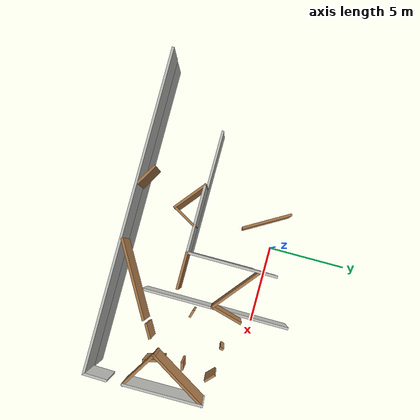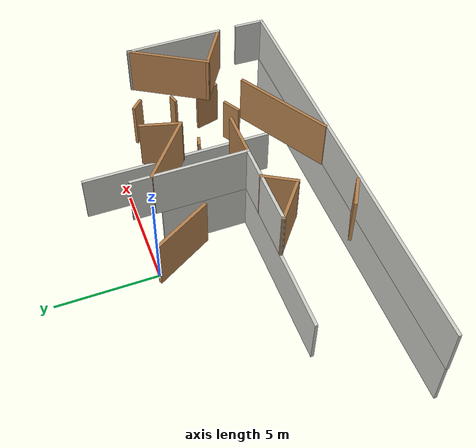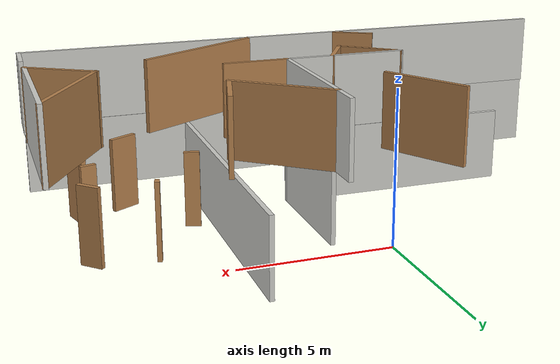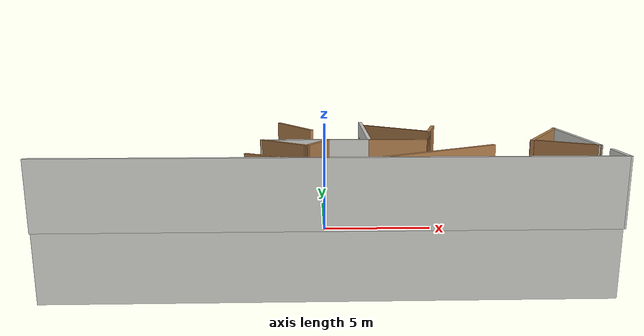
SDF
<sdf version="1.6">
 <model name="home_human">
  <link name="Wall_107">
   <pose>9.99673 -8.19041 2.5 0 -0 1.54043</pose>
   <visual name="Wall_107_Visual">
    <pose>0 0 1.25 0 -0 0</pose>
    <geometry><box><size>1.50013 0.15 2.5</size></box></geometry>
    <material>
     <script><uri>file://media/materials/scripts/gazebo.material</uri><name>Gazebo/CeilingTiled</name></script>
     <ambient>1 1 1 1</ambient>
     <shader type="pixel"/>
    </material>
    <meta><layer>1</layer></meta>
   </visual>
   <collision name="Wall_107_Collision">
    <pose>0 0 1.25 0 -0 0</pose>
    <geometry><box><size>1.50013 0.15 2.5</size></box></geometry>
    <surface>
     <friction>
      <ode><mu>1</mu><mu2>1</mu2><fdir1>0 0 0</fdir1><slip1>0</slip1><slip2>0</slip2></ode>
      <torsional>
       <coefficient>1</coefficient>
       <patch_radius>0</patch_radius>
       <surface_radius>0</surface_radius>
       <use_patch_radius>1</use_patch_radius>
       <ode><slip>0</slip></ode>
      </torsional>
     </friction>
     <bounce><restitution_coefficient>0</restitution_coefficient><threshold>1e+06</threshold></bounce>
     <contact>
      <collide_without_contact>0</collide_without_contact>
      <collide_without_contact_bitmask>1</collide_without_contact_bitmask>
      <collide_bitmask>1</collide_bitmask>
      <ode>
       <soft_cfm>0</soft_cfm>
       <soft_erp>0.2</soft_erp>
       <kp>1e+13</kp>
       <kd>1</kd>
       <max_vel>0.01</max_vel>
       <min_depth>0</min_depth>
      </ode>
      <bullet>
       <split_impulse>1</split_impulse>
       <split_impulse_penetration_threshold>-0.01</split_impulse_penetration_threshold>
       <soft_cfm>0</soft_cfm>
       <soft_erp>0.2</soft_erp>
       <kp>1e+13</kp>
       <kd>1</kd>
      </bullet>
     </contact>
    </surface>
   </collision>
  </link>
  <link name="Wall_109">
   <pose>9.9961 -4.14387 2.5 0 -0 1.57085</pose>
   <visual name="Wall_109_Visual">
    <pose>0 0 1.25 0 -0 0</pose>
    <geometry><box><size>4.89107 0.15 2.5</size></box></geometry>
    <material>
     <script><uri>file://media/materials/scripts/gazebo.material</uri><name>Gazebo/CeilingTiled</name></script>
     <ambient>1 1 1 1</ambient>
     <shader type="pixel"/>
    </material>
    <meta><layer>1</layer></meta>
   </visual>
   <collision name="Wall_109_Collision">
    <pose>0 0 1.25 0 -0 0</pose>
    <geometry><box><size>4.89107 0.15 2.5</size></box></geometry>
    <surface>
     <friction>
      <ode><mu>1</mu><mu2>1</mu2><fdir1>0 0 0</fdir1><slip1>0</slip1><slip2>0</slip2></ode>
      <torsional>
       <coefficient>1</coefficient>
       <patch_radius>0</patch_radius>
       <surface_radius>0</surface_radius>
       <use_patch_radius>1</use_patch_radius>
       <ode><slip>0</slip></ode>
      </torsional>
     </friction>
     <bounce><restitution_coefficient>0</restitution_coefficient><threshold>1e+06</threshold></bounce>
     <contact>
      <collide_without_contact>0</collide_without_contact>
      <collide_without_contact_bitmask>1</collide_without_contact_bitmask>
      <collide_bitmask>1</collide_bitmask>
      <ode>
       <soft_cfm>0</soft_cfm>
       <soft_erp>0.2</soft_erp>
       <kp>1e+13</kp>
       <kd>1</kd>
       <max_vel>0.01</max_vel>
       <min_depth>0</min_depth>
      </ode>
      <bullet>
       <split_impulse>1</split_impulse>
       <split_impulse_penetration_threshold>-0.01</split_impulse_penetration_threshold>
       <soft_cfm>0</soft_cfm>
       <soft_erp>0.2</soft_erp>
       <kp>1e+13</kp>
       <kd>1</kd>
      </bullet>
     </contact>
    </surface>
   </collision>
  </link>
  <link name="Wall_116">
   <pose>3.01923 -1.54991 2.5 0 0 -0.690047</pose>
   <visual name="Wall_116_Visual">
    <pose>0 0 1.25 0 -0 0</pose>
    <geometry><box><size>3.58798 0.15 2.5</size></box></geometry>
    <material>
     <script><uri>file://media/materials/scripts/gazebo.material</uri><name>Gazebo/Wood</name></script>
     <ambient>1 1 1 1</ambient>
     <shader type="pixel"/>
    </material>
    <meta><layer>1</layer></meta>
   </visual>
   <collision name="Wall_116_Collision">
    <pose>0 0 1.25 0 -0 0</pose>
    <geometry><box><size>3.58798 0.15 2.5</size></box></geometry>
    <surface>
     <friction>
      <ode><mu>1</mu><mu2>1</mu2><fdir1>0 0 0</fdir1><slip1>0</slip1><slip2>0</slip2></ode>
      <torsional>
       <coefficient>1</coefficient>
       <patch_radius>0</patch_radius>
       <surface_radius>0</surface_radius>
       <use_patch_radius>1</use_patch_radius>
       <ode><slip>0</slip></ode>
      </torsional>
     </friction>
     <bounce><restitution_coefficient>0</restitution_coefficient><threshold>1e+06</threshold></bounce>
     <contact>
      <collide_without_contact>0</collide_without_contact>
      <collide_without_contact_bitmask>1</collide_without_contact_bitmask>
      <collide_bitmask>1</collide_bitmask>
      <ode>
       <soft_cfm>0</soft_cfm>
       <soft_erp>0.2</soft_erp>
       <kp>1e+13</kp>
       <kd>1</kd>
       <max_vel>0.01</max_vel>
       <min_depth>0</min_depth>
      </ode>
      <bullet>
       <split_impulse>1</split_impulse>
       <split_impulse_penetration_threshold>-0.01</split_impulse_penetration_threshold>
       <soft_cfm>0</soft_cfm>
       <soft_erp>0.2</soft_erp>
       <kp>1e+13</kp>
       <kd>1</kd>
      </bullet>
     </contact>
    </surface>
   </collision>
  </link>
  <link name="Wall_117">
   <pose>4.58464 -1.75093 2.5 0 -0 1.309</pose>
   <visual name="Wall_117_Visual">
    <pose>0 0 1.25 0 -0 0</pose>
    <geometry><box><size>2 0.15 2.5</size></box></geometry>
    <material>
     <script><uri>file://media/materials/scripts/gazebo.material</uri><name>Gazebo/Wood</name></script>
     <ambient>1 1 1 1</ambient>
     <shader type="pixel"/>
    </material>
    <meta><layer>1</layer></meta>
   </visual>
   <collision name="Wall_117_Collision">
    <pose>0 0 1.25 0 -0 0</pose>
    <geometry><box><size>2 0.15 2.5</size></box></geometry>
    <surface>
     <friction>
      <ode><mu>1</mu><mu2>1</mu2><fdir1>0 0 0</fdir1><slip1>0</slip1><slip2>0</slip2></ode>
      <torsional>
       <coefficient>1</coefficient>
       <patch_radius>0</patch_radius>
       <surface_radius>0</surface_radius>
       <use_patch_radius>1</use_patch_radius>
       <ode><slip>0</slip></ode>
      </torsional>
     </friction>
     <bounce><restitution_coefficient>0</restitution_coefficient><threshold>1e+06</threshold></bounce>
     <contact>
      <collide_without_contact>0</collide_without_contact>
      <collide_without_contact_bitmask>1</collide_without_contact_bitmask>
      <collide_bitmask>1</collide_bitmask>
      <ode>
       <soft_cfm>0</soft_cfm>
       <soft_erp>0.2</soft_erp>
       <kp>1e+13</kp>
       <kd>1</kd>
       <max_vel>0.01</max_vel>
       <min_depth>0</min_depth>
      </ode>
      <bullet>
       <split_impulse>1</split_impulse>
       <split_impulse_penetration_threshold>-0.01</split_impulse_penetration_threshold>
       <soft_cfm>0</soft_cfm>
       <soft_erp>0.2</soft_erp>
       <kp>1e+13</kp>
       <kd>1</kd>
      </bullet>
     </contact>
    </surface>
   </collision>
  </link>
  <link name="Wall_121">
   <pose>3.97923 -7.56991 2.5 0 -0 0.523622</pose>
   <visual name="Wall_121_Visual">
    <pose>0 0 1.25 0 -0 0</pose>
    <geometry><box><size>5 0.15 2.5</size></box></geometry>
    <material>
     <script><uri>file://media/materials/scripts/gazebo.material</uri><name>Gazebo/Wood</name></script>
     <ambient>1 1 1 1</ambient>
     <shader type="pixel"/>
    </material>
    <meta><layer>1</layer></meta>
   </visual>
   <collision name="Wall_121_Collision">
    <pose>0 0 1.25 0 -0 0</pose>
    <geometry><box><size>5 0.15 2.5</size></box></geometry>
    <surface>
     <friction>
      <ode><mu>1</mu><mu2>1</mu2><fdir1>0 0 0</fdir1><slip1>0</slip1><slip2>0</slip2></ode>
      <torsional>
       <coefficient>1</coefficient>
       <patch_radius>0</patch_radius>
       <surface_radius>0</surface_radius>
       <use_patch_radius>1</use_patch_radius>
       <ode><slip>0</slip></ode>
      </torsional>
     </friction>
     <bounce><restitution_coefficient>0</restitution_coefficient><threshold>1e+06</threshold></bounce>
     <contact>
      <collide_without_contact>0</collide_without_contact>
      <collide_without_contact_bitmask>1</collide_without_contact_bitmask>
      <collide_bitmask>1</collide_bitmask>
      <ode>
       <soft_cfm>0</soft_cfm>
       <soft_erp>0.2</soft_erp>
       <kp>1e+13</kp>
       <kd>1</kd>
       <max_vel>0.01</max_vel>
       <min_depth>0</min_depth>
      </ode>
      <bullet>
       <split_impulse>1</split_impulse>
       <split_impulse_penetration_threshold>-0.01</split_impulse_penetration_threshold>
       <soft_cfm>0</soft_cfm>
       <soft_erp>0.2</soft_erp>
       <kp>1e+13</kp>
       <kd>1</kd>
      </bullet>
     </contact>
    </surface>
   </collision>
  </link>
  <link name="Wall_137">
   <pose>-1.32027 -0.840407 2.5 0 -0 2.09443</pose>
   <visual name="Wall_137_Visual">
    <pose>0 0 1.25 0 -0 0</pose>
    <geometry><box><size>3 0.15 2.5</size></box></geometry>
    <material>
     <script><uri>file://media/materials/scripts/gazebo.material</uri><name>Gazebo/Wood</name></script>
     <ambient>1 1 1 1</ambient>
     <shader type="pixel"/>
    </material>
    <meta><layer>1</layer></meta>
   </visual>
   <collision name="Wall_137_Collision">
    <pose>0 0 1.25 0 -0 0</pose>
    <geometry><box><size>3 0.15 2.5</size></box></geometry>
    <surface>
     <friction>
      <ode><mu>1</mu><mu2>1</mu2><fdir1>0 0 0</fdir1><slip1>0</slip1><slip2>0</slip2></ode>
      <torsional>
       <coefficient>1</coefficient>
       <patch_radius>0</patch_radius>
       <surface_radius>0</surface_radius>
       <use_patch_radius>1</use_patch_radius>
       <ode><slip>0</slip></ode>
      </torsional>
     </friction>
     <bounce><restitution_coefficient>0</restitution_coefficient><threshold>1e+06</threshold></bounce>
     <contact>
      <collide_without_contact>0</collide_without_contact>
      <collide_without_contact_bitmask>1</collide_without_contact_bitmask>
      <collide_bitmask>1</collide_bitmask>
      <ode>
       <soft_cfm>0</soft_cfm>
       <soft_erp>0.2</soft_erp>
       <kp>1e+13</kp>
       <kd>1</kd>
       <max_vel>0.01</max_vel>
       <min_depth>0</min_depth>
      </ode>
      <bullet>
       <split_impulse>1</split_impulse>
       <split_impulse_penetration_threshold>-0.01</split_impulse_penetration_threshold>
       <soft_cfm>0</soft_cfm>
       <soft_erp>0.2</soft_erp>
       <kp>1e+13</kp>
       <kd>1</kd>
      </bullet>
     </contact>
    </surface>
   </collision>
  </link>
  <link name="Wall_140">
   <pose>2.76302 -4.91326 2.5 0 -0 3.14159</pose>
   <visual name="Wall_140_Visual">
    <pose>0 0 1.25 0 -0 0</pose>
    <geometry><box><size>2.25 0.15 2.5</size></box></geometry>
    <material>
     <script><uri>file://media/materials/scripts/gazebo.material</uri><name>Gazebo/Wood</name></script>
     <ambient>1 1 1 1</ambient>
     <shader type="pixel"/>
    </material>
    <meta><layer>1</layer></meta>
   </visual>
   <collision name="Wall_140_Collision">
    <pose>0 0 1.25 0 -0 0</pose>
    <geometry><box><size>2.25 0.15 2.5</size></box></geometry>
    <surface>
     <friction>
      <ode><mu>1</mu><mu2>1</mu2><fdir1>0 0 0</fdir1><slip1>0</slip1><slip2>0</slip2></ode>
      <torsional>
       <coefficient>1</coefficient>
       <patch_radius>0</patch_radius>
       <surface_radius>0</surface_radius>
       <use_patch_radius>1</use_patch_radius>
       <ode><slip>0</slip></ode>
      </torsional>
     </friction>
     <bounce><restitution_coefficient>0</restitution_coefficient><threshold>1e+06</threshold></bounce>
     <contact>
      <collide_without_contact>0</collide_without_contact>
      <collide_without_contact_bitmask>1</collide_without_contact_bitmask>
      <collide_bitmask>1</collide_bitmask>
      <ode>
       <soft_cfm>0</soft_cfm>
       <soft_erp>0.2</soft_erp>
       <kp>1e+13</kp>
       <kd>1</kd>
       <max_vel>0.01</max_vel>
       <min_depth>0</min_depth>
      </ode>
      <bullet>
       <split_impulse>1</split_impulse>
       <split_impulse_penetration_threshold>-0.01</split_impulse_penetration_threshold>
       <soft_cfm>0</soft_cfm>
       <soft_erp>0.2</soft_erp>
       <kp>1e+13</kp>
       <kd>1</kd>
      </bullet>
     </contact>
    </surface>
   </collision>
  </link>
  <link name="Wall_144">
   <pose>8.96096 -3.52111 2.5 0 0 -2.11443</pose>
   <visual name="Wall_144_Visual">
    <pose>0 0 1.25 0 -0 0</pose>
    <geometry><box><size>4.15194 0.15 2.5</size></box></geometry>
    <material>
     <script><uri>file://media/materials/scripts/gazebo.material</uri><name>Gazebo/Wood</name></script>
     <ambient>1 1 1 1</ambient>
     <shader type="pixel"/>
    </material>
    <meta><layer>1</layer></meta>
   </visual>
   <collision name="Wall_144_Collision">
    <pose>0 0 1.25 0 -0 0</pose>
    <geometry><box><size>4.15194 0.15 2.5</size></box></geometry>
    <surface>
     <friction>
      <ode><mu>1</mu><mu2>1</mu2><fdir1>0 0 0</fdir1><slip1>0</slip1><slip2>0</slip2></ode>
      <torsional>
       <coefficient>1</coefficient>
       <patch_radius>0</patch_radius>
       <surface_radius>0</surface_radius>
       <use_patch_radius>1</use_patch_radius>
       <ode><slip>0</slip></ode>
      </torsional>
     </friction>
     <bounce><restitution_coefficient>0</restitution_coefficient><threshold>1e+06</threshold></bounce>
     <contact>
      <collide_without_contact>0</collide_without_contact>
      <collide_without_contact_bitmask>1</collide_without_contact_bitmask>
      <collide_bitmask>1</collide_bitmask>
      <ode>
       <soft_cfm>0</soft_cfm>
       <soft_erp>0.2</soft_erp>
       <kp>1e+13</kp>
       <kd>1</kd>
       <max_vel>0.01</max_vel>
       <min_depth>0</min_depth>
      </ode>
      <bullet>
       <split_impulse>1</split_impulse>
       <split_impulse_penetration_threshold>-0.01</split_impulse_penetration_threshold>
       <soft_cfm>0</soft_cfm>
       <soft_erp>0.2</soft_erp>
       <kp>1e+13</kp>
       <kd>1</kd>
      </bullet>
     </contact>
    </surface>
   </collision>
  </link>
  <link name="Wall_145">
   <pose>8.9611 -5.85637 2.5 0 0 -0.566256</pose>
   <visual name="Wall_145_Visual">
    <pose>0 0 1.25 0 -0 0</pose>
    <geometry><box><size>2.60317 0.15 2.5</size></box></geometry>
    <material>
     <script><uri>file://media/materials/scripts/gazebo.material</uri><name>Gazebo/Wood</name></script>
     <ambient>1 1 1 1</ambient>
     <shader type="pixel"/>
    </material>
    <meta><layer>1</layer></meta>
   </visual>
   <collision name="Wall_145_Collision">
    <pose>0 0 1.25 0 -0 0</pose>
    <geometry><box><size>2.60317 0.15 2.5</size></box></geometry>
    <surface>
     <friction>
      <ode><mu>1</mu><mu2>1</mu2><fdir1>0 0 0</fdir1><slip1>0</slip1><slip2>0</slip2></ode>
      <torsional>
       <coefficient>1</coefficient>
       <patch_radius>0</patch_radius>
       <surface_radius>0</surface_radius>
       <use_patch_radius>1</use_patch_radius>
       <ode><slip>0</slip></ode>
      </torsional>
     </friction>
     <bounce><restitution_coefficient>0</restitution_coefficient><threshold>1e+06</threshold></bounce>
     <contact>
      <collide_without_contact>0</collide_without_contact>
      <collide_without_contact_bitmask>1</collide_without_contact_bitmask>
      <collide_bitmask>1</collide_bitmask>
      <ode>
       <soft_cfm>0</soft_cfm>
       <soft_erp>0.2</soft_erp>
       <kp>1e+13</kp>
       <kd>1</kd>
       <max_vel>0.01</max_vel>
       <min_depth>0</min_depth>
      </ode>
      <bullet>
       <split_impulse>1</split_impulse>
       <split_impulse_penetration_threshold>-0.01</split_impulse_penetration_threshold>
       <soft_cfm>0</soft_cfm>
       <soft_erp>0.2</soft_erp>
       <kp>1e+13</kp>
       <kd>1</kd>
      </bullet>
     </contact>
    </surface>
   </collision>
  </link>
  <link name="Wall_147">
   <pose>-0.338771 -5.60391 2.5 0 0 -2.09459</pose>
   <visual name="Wall_147_Visual">
    <pose>0 0 1.25 0 -0 0</pose>
    <geometry><box><size>1.75 0.15 2.5</size></box></geometry>
    <material>
     <script><uri>file://media/materials/scripts/gazebo.material</uri><name>Gazebo/Wood</name></script>
     <ambient>1 1 1 1</ambient>
     <shader type="pixel"/>
    </material>
    <meta><layer>1</layer></meta>
   </visual>
   <collision name="Wall_147_Collision">
    <pose>0 0 1.25 0 -0 0</pose>
    <geometry><box><size>1.75 0.15 2.5</size></box></geometry>
    <surface>
     <friction>
      <ode><mu>1</mu><mu2>1</mu2><fdir1>0 0 0</fdir1><slip1>0</slip1><slip2>0</slip2></ode>
      <torsional>
       <coefficient>1</coefficient>
       <patch_radius>0</patch_radius>
       <surface_radius>0</surface_radius>
       <use_patch_radius>1</use_patch_radius>
       <ode><slip>0</slip></ode>
      </torsional>
     </friction>
     <bounce><restitution_coefficient>0</restitution_coefficient><threshold>1e+06</threshold></bounce>
     <contact>
      <collide_without_contact>0</collide_without_contact>
      <collide_without_contact_bitmask>1</collide_without_contact_bitmask>
      <collide_bitmask>1</collide_bitmask>
      <ode>
       <soft_cfm>0</soft_cfm>
       <soft_erp>0.2</soft_erp>
       <kp>1e+13</kp>
       <kd>1</kd>
       <max_vel>0.01</max_vel>
       <min_depth>0</min_depth>
      </ode>
      <bullet>
       <split_impulse>1</split_impulse>
       <split_impulse_penetration_threshold>-0.01</split_impulse_penetration_threshold>
       <soft_cfm>0</soft_cfm>
       <soft_erp>0.2</soft_erp>
       <kp>1e+13</kp>
       <kd>1</kd>
      </bullet>
     </contact>
    </surface>
   </collision>
  </link>
  <link name="Wall_148">
   <pose>-1.58827 -5.60291 2.5 0 -0 2.45695</pose>
   <visual name="Wall_148_Visual">
    <pose>0 0 1.25 0 -0 0</pose>
    <geometry><box><size>2.34326 0.15 2.5</size></box></geometry>
    <material>
     <script><uri>file://media/materials/scripts/gazebo.material</uri><name>Gazebo/Wood</name></script>
     <ambient>1 1 1 1</ambient>
     <shader type="pixel"/>
    </material>
    <meta><layer>1</layer></meta>
   </visual>
   <collision name="Wall_148_Collision">
    <pose>0 0 1.25 0 -0 0</pose>
    <geometry><box><size>2.34326 0.15 2.5</size></box></geometry>
    <surface>
     <friction>
      <ode><mu>1</mu><mu2>1</mu2><fdir1>0 0 0</fdir1><slip1>0</slip1><slip2>0</slip2></ode>
      <torsional>
       <coefficient>1</coefficient>
       <patch_radius>0</patch_radius>
       <surface_radius>0</surface_radius>
       <use_patch_radius>1</use_patch_radius>
       <ode><slip>0</slip></ode>
      </torsional>
     </friction>
     <bounce><restitution_coefficient>0</restitution_coefficient><threshold>1e+06</threshold></bounce>
     <contact>
      <collide_without_contact>0</collide_without_contact>
      <collide_without_contact_bitmask>1</collide_without_contact_bitmask>
      <collide_bitmask>1</collide_bitmask>
      <ode>
       <soft_cfm>0</soft_cfm>
       <soft_erp>0.2</soft_erp>
       <kp>1e+13</kp>
       <kd>1</kd>
       <max_vel>0.01</max_vel>
       <min_depth>0</min_depth>
      </ode>
      <bullet>
       <split_impulse>1</split_impulse>
       <split_impulse_penetration_threshold>-0.01</split_impulse_penetration_threshold>
       <soft_cfm>0</soft_cfm>
       <soft_erp>0.2</soft_erp>
       <kp>1e+13</kp>
       <kd>1</kd>
      </bullet>
     </contact>
    </surface>
   </collision>
  </link>
  <link name="Wall_151">
   <pose>-2.15434 -8.41891 2.5 0 0 -0.523599</pose>
   <visual name="Wall_151_Visual">
    <pose>0 0 1.25 0 -0 0</pose>
    <geometry><box><size>1.5 0.15 2.5</size></box></geometry>
    <material>
     <script><uri>file://media/materials/scripts/gazebo.material</uri><name>Gazebo/Wood</name></script>
     <ambient>1 1 1 1</ambient>
     <shader type="pixel"/>
    </material>
    <meta><layer>1</layer></meta>
   </visual>
   <collision name="Wall_151_Collision">
    <pose>0 0 1.25 0 -0 0</pose>
    <geometry><box><size>1.5 0.15 2.5</size></box></geometry>
    <surface>
     <friction>
      <ode><mu>1</mu><mu2>1</mu2><fdir1>0 0 0</fdir1><slip1>0</slip1><slip2>0</slip2></ode>
      <torsional>
       <coefficient>1</coefficient>
       <patch_radius>0</patch_radius>
       <surface_radius>0</surface_radius>
       <use_patch_radius>1</use_patch_radius>
       <ode><slip>0</slip></ode>
      </torsional>
     </friction>
     <bounce><restitution_coefficient>0</restitution_coefficient><threshold>1e+06</threshold></bounce>
     <contact>
      <collide_without_contact>0</collide_without_contact>
      <collide_without_contact_bitmask>1</collide_without_contact_bitmask>
      <collide_bitmask>1</collide_bitmask>
      <ode>
       <soft_cfm>0</soft_cfm>
       <soft_erp>0.2</soft_erp>
       <kp>1e+13</kp>
       <kd>1</kd>
       <max_vel>0.01</max_vel>
       <min_depth>0</min_depth>
      </ode>
      <bullet>
       <split_impulse>1</split_impulse>
       <split_impulse_penetration_threshold>-0.01</split_impulse_penetration_threshold>
       <soft_cfm>0</soft_cfm>
       <soft_erp>0.2</soft_erp>
       <kp>1e+13</kp>
       <kd>1</kd>
      </bullet>
     </contact>
    </surface>
   </collision>
  </link>
  <link name="Wall_21">
   <pose>0.054729 -8.86891 0 0 -0 0.002388</pose>
   <visual name="Wall_21_Visual">
    <pose>0 0 1.25 0 -0 0</pose>
    <geometry><box><size>19.8294 0.15 2.5</size></box></geometry>
    <material>
     <script><uri>file://media/materials/scripts/gazebo.material</uri><name>Gazebo/CeilingTiled</name></script>
     <ambient>1 1 1 1</ambient>
     <shader type="pixel"/>
    </material>
    <meta><layer>0</layer></meta>
   </visual>
   <collision name="Wall_21_Collision">
    <pose>0 0 1.25 0 -0 0</pose>
    <geometry><box><size>19.8294 0.15 2.5</size></box></geometry>
    <surface>
     <friction>
      <ode><mu>1</mu><mu2>1</mu2><fdir1>0 0 0</fdir1><slip1>0</slip1><slip2>0</slip2></ode>
      <torsional>
       <coefficient>1</coefficient>
       <patch_radius>0</patch_radius>
       <surface_radius>0</surface_radius>
       <use_patch_radius>1</use_patch_radius>
       <ode><slip>0</slip></ode>
      </torsional>
     </friction>
     <bounce><restitution_coefficient>0</restitution_coefficient><threshold>1e+06</threshold></bounce>
     <contact>
      <collide_without_contact>0</collide_without_contact>
      <collide_without_contact_bitmask>1</collide_without_contact_bitmask>
      <collide_bitmask>1</collide_bitmask>
      <ode>
       <soft_cfm>0</soft_cfm>
       <soft_erp>0.2</soft_erp>
       <kp>1e+13</kp>
       <kd>1</kd>
       <max_vel>0.01</max_vel>
       <min_depth>0</min_depth>
      </ode>
      <bullet>
       <split_impulse>1</split_impulse>
       <split_impulse_penetration_threshold>-0.01</split_impulse_penetration_threshold>
       <soft_cfm>0</soft_cfm>
       <soft_erp>0.2</soft_erp>
       <kp>1e+13</kp>
       <kd>1</kd>
      </bullet>
     </contact>
    </surface>
   </collision>
  </link>
  <link name="Wall_28">
   <pose>4.62473 -2.46591 0 0 -0 1.56594</pose>
   <visual name="Wall_28_Visual">
    <pose>0 0 1.25 0 -0 0</pose>
    <geometry><box><size>9.4247 0.15 2.5</size></box></geometry>
    <material>
     <script><uri>file://media/materials/scripts/gazebo.material</uri><name>Gazebo/CeilingTiled</name></script>
     <ambient>1 1 1 1</ambient>
     <shader type="pixel"/>
    </material>
    <meta><layer>0</layer></meta>
   </visual>
   <collision name="Wall_28_Collision">
    <pose>0 0 1.25 0 -0 0</pose>
    <geometry><box><size>9.4247 0.15 2.5</size></box></geometry>
    <surface>
     <friction>
      <ode><mu>1</mu><mu2>1</mu2><fdir1>0 0 0</fdir1><slip1>0</slip1><slip2>0</slip2></ode>
      <torsional>
       <coefficient>1</coefficient>
       <patch_radius>0</patch_radius>
       <surface_radius>0</surface_radius>
       <use_patch_radius>1</use_patch_radius>
       <ode><slip>0</slip></ode>
      </torsional>
     </friction>
     <bounce><restitution_coefficient>0</restitution_coefficient><threshold>1e+06</threshold></bounce>
     <contact>
      <collide_without_contact>0</collide_without_contact>
      <collide_without_contact_bitmask>1</collide_without_contact_bitmask>
      <collide_bitmask>1</collide_bitmask>
      <ode>
       <soft_cfm>0</soft_cfm>
       <soft_erp>0.2</soft_erp>
       <kp>1e+13</kp>
       <kd>1</kd>
       <max_vel>0.01</max_vel>
       <min_depth>0</min_depth>
      </ode>
      <bullet>
       <split_impulse>1</split_impulse>
       <split_impulse_penetration_threshold>-0.01</split_impulse_penetration_threshold>
       <soft_cfm>0</soft_cfm>
       <soft_erp>0.2</soft_erp>
       <kp>1e+13</kp>
       <kd>1</kd>
      </bullet>
     </contact>
    </surface>
   </collision>
  </link>
  <link name="Wall_35">
   <pose>-2.28427 -4.8933 0 0 0 -0.002507</pose>
   <visual name="Wall_35_Visual">
    <pose>0 0 1.25 0 -0 0</pose>
    <geometry><box><size>8.04365 0.15 2.5</size></box></geometry>
    <material>
     <script><uri>file://media/materials/scripts/gazebo.material</uri><name>Gazebo/CeilingTiled</name></script>
     <ambient>1 1 1 1</ambient>
     <shader type="pixel"/>
    </material>
    <meta><layer>0</layer></meta>
   </visual>
   <collision name="Wall_35_Collision">
    <pose>0 0 1.25 0 -0 0</pose>
    <geometry><box><size>8.04365 0.15 2.5</size></box></geometry>
    <surface>
     <friction>
      <ode><mu>1</mu><mu2>1</mu2><fdir1>0 0 0</fdir1><slip1>0</slip1><slip2>0</slip2></ode>
      <torsional>
       <coefficient>1</coefficient>
       <patch_radius>0</patch_radius>
       <surface_radius>0</surface_radius>
       <use_patch_radius>1</use_patch_radius>
       <ode><slip>0</slip></ode>
      </torsional>
     </friction>
     <bounce><restitution_coefficient>0</restitution_coefficient><threshold>1e+06</threshold></bounce>
     <contact>
      <collide_without_contact>0</collide_without_contact>
      <collide_without_contact_bitmask>1</collide_without_contact_bitmask>
      <collide_bitmask>1</collide_bitmask>
      <ode>
       <soft_cfm>0</soft_cfm>
       <soft_erp>0.2</soft_erp>
       <kp>1e+13</kp>
       <kd>1</kd>
       <max_vel>0.01</max_vel>
       <min_depth>0</min_depth>
      </ode>
      <bullet>
       <split_impulse>1</split_impulse>
       <split_impulse_penetration_threshold>-0.01</split_impulse_penetration_threshold>
       <soft_cfm>0</soft_cfm>
       <soft_erp>0.2</soft_erp>
       <kp>1e+13</kp>
       <kd>1</kd>
      </bullet>
     </contact>
    </surface>
   </collision>
  </link>
  <link name="Wall_39">
   <pose>1.66223 -2.89398 0 0 -0 1.5708</pose>
   <visual name="Wall_39_Visual">
    <pose>0 0 1.25 0 -0 0</pose>
    <geometry><box><size>4.25 0.15 2.5</size></box></geometry>
    <material>
     <script><uri>file://media/materials/scripts/gazebo.material</uri><name>Gazebo/CeilingTiled</name></script>
     <ambient>1 1 1 1</ambient>
     <shader type="pixel"/>
    </material>
    <meta><layer>0</layer></meta>
   </visual>
   <collision name="Wall_39_Collision">
    <pose>0 0 1.25 0 -0 0</pose>
    <geometry><box><size>4.25 0.15 2.5</size></box></geometry>
    <surface>
     <friction>
      <ode><mu>1</mu><mu2>1</mu2><fdir1>0 0 0</fdir1><slip1>0</slip1><slip2>0</slip2></ode>
      <torsional>
       <coefficient>1</coefficient>
       <patch_radius>0</patch_radius>
       <surface_radius>0</surface_radius>
       <use_patch_radius>1</use_patch_radius>
       <ode><slip>0</slip></ode>
      </torsional>
     </friction>
     <bounce><restitution_coefficient>0</restitution_coefficient><threshold>1e+06</threshold></bounce>
     <contact>
      <collide_without_contact>0</collide_without_contact>
      <collide_without_contact_bitmask>1</collide_without_contact_bitmask>
      <collide_bitmask>1</collide_bitmask>
      <ode>
       <soft_cfm>0</soft_cfm>
       <soft_erp>0.2</soft_erp>
       <kp>1e+13</kp>
       <kd>1</kd>
       <max_vel>0.01</max_vel>
       <min_depth>0</min_depth>
      </ode>
      <bullet>
       <split_impulse>1</split_impulse>
       <split_impulse_penetration_threshold>-0.01</split_impulse_penetration_threshold>
       <soft_cfm>0</soft_cfm>
       <soft_erp>0.2</soft_erp>
       <kp>1e+13</kp>
       <kd>1</kd>
      </bullet>
     </contact>
    </surface>
   </collision>
  </link>
  <link name="Wall_47">
   <pose>6.90123 -1.43541 0 0 -0 1.30631</pose>
   <visual name="Wall_47_Visual">
    <pose>0 0 1.25 0 -0 0</pose>
    <geometry><box><size>0.25 0.15 2.5</size></box></geometry>
    <material>
     <script><uri>file://media/materials/scripts/gazebo.material</uri><name>Gazebo/Wood</name></script>
     <ambient>1 1 1 1</ambient>
     <shader type="pixel"/>
    </material>
    <meta><layer>0</layer></meta>
   </visual>
   <collision name="Wall_47_Collision">
    <pose>0 0 1.25 0 -0 0</pose>
    <geometry><box><size>0.25 0.15 2.5</size></box></geometry>
    <surface>
     <friction>
      <ode><mu>1</mu><mu2>1</mu2><fdir1>0 0 0</fdir1><slip1>0</slip1><slip2>0</slip2></ode>
      <torsional>
       <coefficient>1</coefficient>
       <patch_radius>0</patch_radius>
       <surface_radius>0</surface_radius>
       <use_patch_radius>1</use_patch_radius>
       <ode><slip>0</slip></ode>
      </torsional>
     </friction>
     <bounce><restitution_coefficient>0</restitution_coefficient><threshold>1e+06</threshold></bounce>
     <contact>
      <collide_without_contact>0</collide_without_contact>
      <collide_without_contact_bitmask>1</collide_without_contact_bitmask>
      <collide_bitmask>1</collide_bitmask>
      <ode>
       <soft_cfm>0</soft_cfm>
       <soft_erp>0.2</soft_erp>
       <kp>1e+13</kp>
       <kd>1</kd>
       <max_vel>0.01</max_vel>
       <min_depth>0</min_depth>
      </ode>
      <bullet>
       <split_impulse>1</split_impulse>
       <split_impulse_penetration_threshold>-0.01</split_impulse_penetration_threshold>
       <soft_cfm>0</soft_cfm>
       <soft_erp>0.2</soft_erp>
       <kp>1e+13</kp>
       <kd>1</kd>
      </bullet>
     </contact>
    </surface>
   </collision>
  </link>
  <link name="Wall_49">
   <pose>8.84198 -1.68209 0 0 0 -0.78422</pose>
   <visual name="Wall_49_Visual">
    <pose>0 0 1.25 0 -0 0</pose>
    <geometry><box><size>0.750334 0.15 2.5</size></box></geometry>
    <material>
     <script><uri>file://media/materials/scripts/gazebo.material</uri><name>Gazebo/Wood</name></script>
     <ambient>1 1 1 1</ambient>
     <shader type="pixel"/>
    </material>
    <meta><layer>0</layer></meta>
   </visual>
   <collision name="Wall_49_Collision">
    <pose>0 0 1.25 0 -0 0</pose>
    <geometry><box><size>0.750334 0.15 2.5</size></box></geometry>
    <surface>
     <friction>
      <ode><mu>1</mu><mu2>1</mu2><fdir1>0 0 0</fdir1><slip1>0</slip1><slip2>0</slip2></ode>
      <torsional>
       <coefficient>1</coefficient>
       <patch_radius>0</patch_radius>
       <surface_radius>0</surface_radius>
       <use_patch_radius>1</use_patch_radius>
       <ode><slip>0</slip></ode>
      </torsional>
     </friction>
     <bounce><restitution_coefficient>0</restitution_coefficient><threshold>1e+06</threshold></bounce>
     <contact>
      <collide_without_contact>0</collide_without_contact>
      <collide_without_contact_bitmask>1</collide_without_contact_bitmask>
      <collide_bitmask>1</collide_bitmask>
      <ode>
       <soft_cfm>0</soft_cfm>
       <soft_erp>0.2</soft_erp>
       <kp>1e+13</kp>
       <kd>1</kd>
       <max_vel>0.01</max_vel>
       <min_depth>0</min_depth>
      </ode>
      <bullet>
       <split_impulse>1</split_impulse>
       <split_impulse_penetration_threshold>-0.01</split_impulse_penetration_threshold>
       <soft_cfm>0</soft_cfm>
       <soft_erp>0.2</soft_erp>
       <kp>1e+13</kp>
       <kd>1</kd>
      </bullet>
     </contact>
    </surface>
   </collision>
  </link>
  <link name="Wall_51">
   <pose>5.29223 -3.79191 0 0 0 -0.262995</pose>
   <visual name="Wall_51_Visual">
    <pose>0 0 1.25 0 -0 0</pose>
    <geometry><box><size>0.5 0.15 2.5</size></box></geometry>
    <material>
     <script><uri>file://media/materials/scripts/gazebo.material</uri><name>Gazebo/Wood</name></script>
     <ambient>1 1 1 1</ambient>
     <shader type="pixel"/>
    </material>
    <meta><layer>0</layer></meta>
   </visual>
   <collision name="Wall_51_Collision">
    <pose>0 0 1.25 0 -0 0</pose>
    <geometry><box><size>0.5 0.15 2.5</size></box></geometry>
    <surface>
     <friction>
      <ode><mu>1</mu><mu2>1</mu2><fdir1>0 0 0</fdir1><slip1>0</slip1><slip2>0</slip2></ode>
      <torsional>
       <coefficient>1</coefficient>
       <patch_radius>0</patch_radius>
       <surface_radius>0</surface_radius>
       <use_patch_radius>1</use_patch_radius>
       <ode><slip>0</slip></ode>
      </torsional>
     </friction>
     <bounce><restitution_coefficient>0</restitution_coefficient><threshold>1e+06</threshold></bounce>
     <contact>
      <collide_without_contact>0</collide_without_contact>
      <collide_without_contact_bitmask>1</collide_without_contact_bitmask>
      <collide_bitmask>1</collide_bitmask>
      <ode>
       <soft_cfm>0</soft_cfm>
       <soft_erp>0.2</soft_erp>
       <kp>1e+13</kp>
       <kd>1</kd>
       <max_vel>0.01</max_vel>
       <min_depth>0</min_depth>
      </ode>
      <bullet>
       <split_impulse>1</split_impulse>
       <split_impulse_penetration_threshold>-0.01</split_impulse_penetration_threshold>
       <soft_cfm>0</soft_cfm>
       <soft_erp>0.2</soft_erp>
       <kp>1e+13</kp>
       <kd>1</kd>
      </bullet>
     </contact>
    </surface>
   </collision>
  </link>
  <link name="Wall_53">
   <pose>8.58123 -3.53741 0 0 -0 0.260234</pose>
   <visual name="Wall_53_Visual">
    <pose>0 0 1.25 0 -0 0</pose>
    <geometry><box><size>0.5 0.15 2.5</size></box></geometry>
    <material>
     <script><uri>file://media/materials/scripts/gazebo.material</uri><name>Gazebo/Wood</name></script>
     <ambient>1 1 1 1</ambient>
     <shader type="pixel"/>
    </material>
    <meta><layer>0</layer></meta>
   </visual>
   <collision name="Wall_53_Collision">
    <pose>0 0 1.25 0 -0 0</pose>
    <geometry><box><size>0.5 0.15 2.5</size></box></geometry>
    <surface>
     <friction>
      <ode><mu>1</mu><mu2>1</mu2><fdir1>0 0 0</fdir1><slip1>0</slip1><slip2>0</slip2></ode>
      <torsional>
       <coefficient>1</coefficient>
       <patch_radius>0</patch_radius>
       <surface_radius>0</surface_radius>
       <use_patch_radius>1</use_patch_radius>
       <ode><slip>0</slip></ode>
      </torsional>
     </friction>
     <bounce><restitution_coefficient>0</restitution_coefficient><threshold>1e+06</threshold></bounce>
     <contact>
      <collide_without_contact>0</collide_without_contact>
      <collide_without_contact_bitmask>1</collide_without_contact_bitmask>
      <collide_bitmask>1</collide_bitmask>
      <ode>
       <soft_cfm>0</soft_cfm>
       <soft_erp>0.2</soft_erp>
       <kp>1e+13</kp>
       <kd>1</kd>
       <max_vel>0.01</max_vel>
       <min_depth>0</min_depth>
      </ode>
      <bullet>
       <split_impulse>1</split_impulse>
       <split_impulse_penetration_threshold>-0.01</split_impulse_penetration_threshold>
       <soft_cfm>0</soft_cfm>
       <soft_erp>0.2</soft_erp>
       <kp>1e+13</kp>
       <kd>1</kd>
      </bullet>
     </contact>
    </surface>
   </collision>
  </link>
  <link name="Wall_55">
   <pose>7.05501 -6.15316 0 0 0 -2.61799</pose>
   <visual name="Wall_55_Visual">
    <pose>0 0 1.25 0 -0 0</pose>
    <geometry><box><size>1 0.15 2.5</size></box></geometry>
    <material>
     <script><uri>file://media/materials/scripts/gazebo.material</uri><name>Gazebo/Wood</name></script>
     <ambient>1 1 1 1</ambient>
     <shader type="pixel"/>
    </material>
    <meta><layer>0</layer></meta>
   </visual>
   <collision name="Wall_55_Collision">
    <pose>0 0 1.25 0 -0 0</pose>
    <geometry><box><size>1 0.15 2.5</size></box></geometry>
    <surface>
     <friction>
      <ode><mu>1</mu><mu2>1</mu2><fdir1>0 0 0</fdir1><slip1>0</slip1><slip2>0</slip2></ode>
      <torsional>
       <coefficient>1</coefficient>
       <patch_radius>0</patch_radius>
       <surface_radius>0</surface_radius>
       <use_patch_radius>1</use_patch_radius>
       <ode><slip>0</slip></ode>
      </torsional>
     </friction>
     <bounce><restitution_coefficient>0</restitution_coefficient><threshold>1e+06</threshold></bounce>
     <contact>
      <collide_without_contact>0</collide_without_contact>
      <collide_without_contact_bitmask>1</collide_without_contact_bitmask>
      <collide_bitmask>1</collide_bitmask>
      <ode>
       <soft_cfm>0</soft_cfm>
       <soft_erp>0.2</soft_erp>
       <kp>1e+13</kp>
       <kd>1</kd>
       <max_vel>0.01</max_vel>
       <min_depth>0</min_depth>
      </ode>
      <bullet>
       <split_impulse>1</split_impulse>
       <split_impulse_penetration_threshold>-0.01</split_impulse_penetration_threshold>
       <soft_cfm>0</soft_cfm>
       <soft_erp>0.2</soft_erp>
       <kp>1e+13</kp>
       <kd>1</kd>
      </bullet>
     </contact>
    </surface>
   </collision>
  </link>
  <link name="Wall_59">
   <pose>8.70906 -5.39058 0 0 0 -1.309</pose>
   <visual name="Wall_59_Visual">
    <pose>0 0 1.25 0 -0 0</pose>
    <geometry><box><size>1.25 0.15 2.5</size></box></geometry>
    <material>
     <script><uri>file://media/materials/scripts/gazebo.material</uri><name>Gazebo/Wood</name></script>
     <ambient>1 1 1 1</ambient>
     <shader type="pixel"/>
    </material>
    <meta><layer>0</layer></meta>
   </visual>
   <collision name="Wall_59_Collision">
    <pose>0 0 1.25 0 -0 0</pose>
    <geometry><box><size>1.25 0.15 2.5</size></box></geometry>
    <surface>
     <friction>
      <ode><mu>1</mu><mu2>1</mu2><fdir1>0 0 0</fdir1><slip1>0</slip1><slip2>0</slip2></ode>
      <torsional>
       <coefficient>1</coefficient>
       <patch_radius>0</patch_radius>
       <surface_radius>0</surface_radius>
       <use_patch_radius>1</use_patch_radius>
       <ode><slip>0</slip></ode>
      </torsional>
     </friction>
     <bounce><restitution_coefficient>0</restitution_coefficient><threshold>1e+06</threshold></bounce>
     <contact>
      <collide_without_contact>0</collide_without_contact>
      <collide_without_contact_bitmask>1</collide_without_contact_bitmask>
      <collide_bitmask>1</collide_bitmask>
      <ode>
       <soft_cfm>0</soft_cfm>
       <soft_erp>0.2</soft_erp>
       <kp>1e+13</kp>
       <kd>1</kd>
       <max_vel>0.01</max_vel>
       <min_depth>0</min_depth>
      </ode>
      <bullet>
       <split_impulse>1</split_impulse>
       <split_impulse_penetration_threshold>-0.01</split_impulse_penetration_threshold>
       <soft_cfm>0</soft_cfm>
       <soft_erp>0.2</soft_erp>
       <kp>1e+13</kp>
       <kd>1</kd>
      </bullet>
     </contact>
    </surface>
   </collision>
  </link>
  <link name="Wall_63">
   <pose>0.075229 -8.87891 2.5 0 -0 0.001363</pose>
   <visual name="Wall_63_Visual">
    <pose>0 0 1.25 0 -0 0</pose>
    <geometry><box><size>19.952 0.15 2.5</size></box></geometry>
    <material>
     <script><uri>file://media/materials/scripts/gazebo.material</uri><name>Gazebo/CeilingTiled</name></script>
     <ambient>1 1 1 1</ambient>
     <shader type="pixel"/>
    </material>
    <meta><layer>1</layer></meta>
   </visual>
   <collision name="Wall_63_Collision">
    <pose>0 0 1.25 0 -0 0</pose>
    <geometry><box><size>19.952 0.15 2.5</size></box></geometry>
    <surface>
     <friction>
      <ode><mu>1</mu><mu2>1</mu2><fdir1>0 0 0</fdir1><slip1>0</slip1><slip2>0</slip2></ode>
      <torsional>
       <coefficient>1</coefficient>
       <patch_radius>0</patch_radius>
       <surface_radius>0</surface_radius>
       <use_patch_radius>1</use_patch_radius>
       <ode><slip>0</slip></ode>
      </torsional>
     </friction>
     <bounce><restitution_coefficient>0</restitution_coefficient><threshold>1e+06</threshold></bounce>
     <contact>
      <collide_without_contact>0</collide_without_contact>
      <collide_without_contact_bitmask>1</collide_without_contact_bitmask>
      <collide_bitmask>1</collide_bitmask>
      <ode>
       <soft_cfm>0</soft_cfm>
       <soft_erp>0.2</soft_erp>
       <kp>1e+13</kp>
       <kd>1</kd>
       <max_vel>0.01</max_vel>
       <min_depth>0</min_depth>
      </ode>
      <bullet>
       <split_impulse>1</split_impulse>
       <split_impulse_penetration_threshold>-0.01</split_impulse_penetration_threshold>
       <soft_cfm>0</soft_cfm>
       <soft_erp>0.2</soft_erp>
       <kp>1e+13</kp>
       <kd>1</kd>
      </bullet>
     </contact>
    </surface>
   </collision>
  </link>
  <link name="Wall_71">
   <pose>1.67223 -2.20091 2.5 0 -0 1.5671</pose>
   <visual name="Wall_71_Visual">
    <pose>0 0 1.25 0 -0 0</pose>
    <geometry><box><size>5.56641 0.15 2.5</size></box></geometry>
    <material>
     <script><uri>file://media/materials/scripts/gazebo.material</uri><name>Gazebo/CeilingTiled</name></script>
     <ambient>1 1 1 1</ambient>
     <shader type="pixel"/>
    </material>
    <meta><layer>1</layer></meta>
   </visual>
   <collision name="Wall_71_Collision">
    <pose>0 0 1.25 0 -0 0</pose>
    <geometry><box><size>5.56641 0.15 2.5</size></box></geometry>
    <surface>
     <friction>
      <ode><mu>1</mu><mu2>1</mu2><fdir1>0 0 0</fdir1><slip1>0</slip1><slip2>0</slip2></ode>
      <torsional>
       <coefficient>1</coefficient>
       <patch_radius>0</patch_radius>
       <surface_radius>0</surface_radius>
       <use_patch_radius>1</use_patch_radius>
       <ode><slip>0</slip></ode>
      </torsional>
     </friction>
     <bounce><restitution_coefficient>0</restitution_coefficient><threshold>1e+06</threshold></bounce>
     <contact>
      <collide_without_contact>0</collide_without_contact>
      <collide_without_contact_bitmask>1</collide_without_contact_bitmask>
      <collide_bitmask>1</collide_bitmask>
      <ode>
       <soft_cfm>0</soft_cfm>
       <soft_erp>0.2</soft_erp>
       <kp>1e+13</kp>
       <kd>1</kd>
       <max_vel>0.01</max_vel>
       <min_depth>0</min_depth>
      </ode>
      <bullet>
       <split_impulse>1</split_impulse>
       <split_impulse_penetration_threshold>-0.01</split_impulse_penetration_threshold>
       <soft_cfm>0</soft_cfm>
       <soft_erp>0.2</soft_erp>
       <kp>1e+13</kp>
       <kd>1</kd>
      </bullet>
     </contact>
    </surface>
   </collision>
  </link>
  <link name="Wall_95">
   <pose>-0.387771 -4.90941 2.5 0 -0 3.14159</pose>
   <visual name="Wall_95_Visual">
    <pose>0 0 1.25 0 -0 0</pose>
    <geometry><box><size>4.25 0.15 2.5</size></box></geometry>
    <material>
     <script><uri>file://media/materials/scripts/gazebo.material</uri><name>Gazebo/CeilingTiled</name></script>
     <ambient>1 1 1 1</ambient>
     <shader type="pixel"/>
    </material>
    <meta><layer>1</layer></meta>
   </visual>
   <collision name="Wall_95_Collision">
    <pose>0 0 1.25 0 -0 0</pose>
    <geometry><box><size>4.25 0.15 2.5</size></box></geometry>
    <surface>
     <friction>
      <ode><mu>1</mu><mu2>1</mu2><fdir1>0 0 0</fdir1><slip1>0</slip1><slip2>0</slip2></ode>
      <torsional>
       <coefficient>1</coefficient>
       <patch_radius>0</patch_radius>
       <surface_radius>0</surface_radius>
       <use_patch_radius>1</use_patch_radius>
       <ode><slip>0</slip></ode>
      </torsional>
     </friction>
     <bounce><restitution_coefficient>0</restitution_coefficient><threshold>1e+06</threshold></bounce>
     <contact>
      <collide_without_contact>0</collide_without_contact>
      <collide_without_contact_bitmask>1</collide_without_contact_bitmask>
      <collide_bitmask>1</collide_bitmask>
      <ode>
       <soft_cfm>0</soft_cfm>
       <soft_erp>0.2</soft_erp>
       <kp>1e+13</kp>
       <kd>1</kd>
       <max_vel>0.01</max_vel>
       <min_depth>0</min_depth>
      </ode>
      <bullet>
       <split_impulse>1</split_impulse>
       <split_impulse_penetration_threshold>-0.01</split_impulse_penetration_threshold>
       <soft_cfm>0</soft_cfm>
       <soft_erp>0.2</soft_erp>
       <kp>1e+13</kp>
       <kd>1</kd>
      </bullet>
     </contact>
    </surface>
   </collision>
  </link>
  <static>1</static>
 </model>
</sdf>
